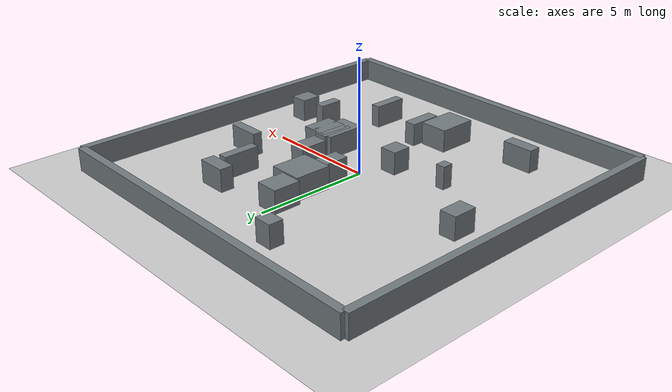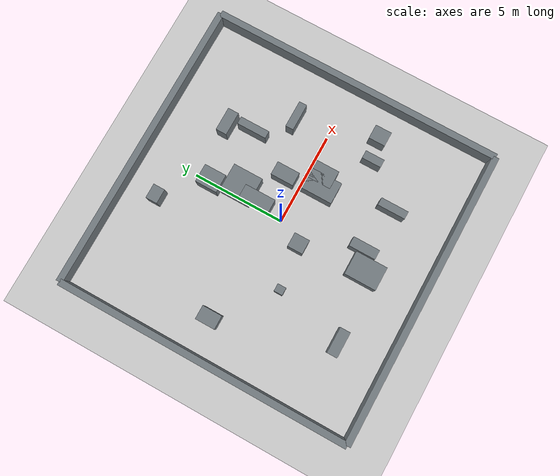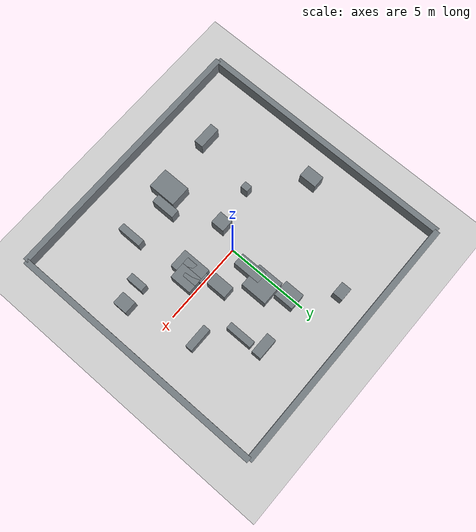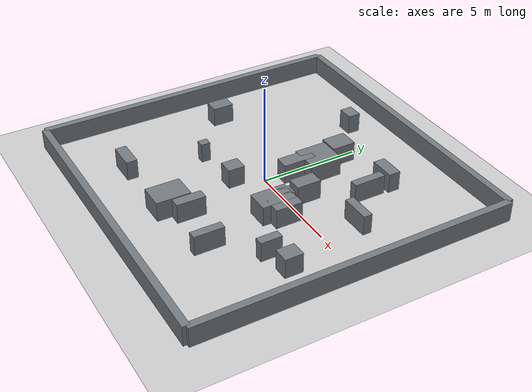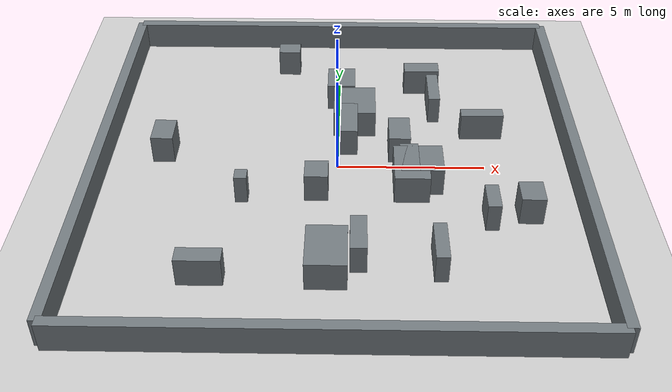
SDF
<?xml version="1.0" ?>
<sdf version="1.10">
  <world name="random_blocks_5">
    <physics name="1ms" type="ignored">
      <max_step_size>0.001</max_step_size>
      <real_time_factor>1.0</real_time_factor>
    </physics>
    <plugin filename="gz-sim-physics-system" name="gz::sim::systems::Physics"/>
    <plugin filename="gz-sim-user-commands-system" name="gz::sim::systems::UserCommands"/>
    <plugin filename="gz-sim-scene-broadcaster-system" name="gz::sim::systems::SceneBroadcaster"/>
    <light name="sun" type="directional">
      <pose>0 0 10 0 0 0</pose>
      <diffuse>0.8 0.8 0.8 1</diffuse>
      <specular>0.2 0.2 0.2 1</specular>
      <direction>-0.5 0.1 -0.9</direction>
    </light>
    <model name="ground_plane">
      <static>true</static>
      <link name="link">
        <collision name="collision"><geometry><plane><normal>0 0 1</normal><size>30 30</size></plane></geometry></collision>
        <visual name="visual"><geometry><plane><normal>0 0 1</normal><size>30 30</size></plane></geometry></visual>
      </link>
    </model>

    <model name="boundary_north">
      <static>true</static>
      <pose>0.000 8.000 0.500 0 0 0</pose>
      <link name="link">
        <collision name="collision">
          <geometry><box><size>16.000 0.350 1.000</size></box></geometry>
        </collision>
        <visual name="visual">
          <geometry><box><size>16.000 0.350 1.000</size></box></geometry>
          <material><ambient>0.45 0.48 0.50 1</ambient><diffuse>0.45 0.48 0.50 1</diffuse></material>
        </visual>
      </link>
    </model>
    <model name="boundary_south">
      <static>true</static>
      <pose>0.000 -8.000 0.500 0 0 0</pose>
      <link name="link">
        <collision name="collision">
          <geometry><box><size>16.000 0.350 1.000</size></box></geometry>
        </collision>
        <visual name="visual">
          <geometry><box><size>16.000 0.350 1.000</size></box></geometry>
          <material><ambient>0.45 0.48 0.50 1</ambient><diffuse>0.45 0.48 0.50 1</diffuse></material>
        </visual>
      </link>
    </model>
    <model name="boundary_west">
      <static>true</static>
      <pose>-8.000 0.000 0.500 0 0 0</pose>
      <link name="link">
        <collision name="collision">
          <geometry><box><size>0.350 16.000 1.000</size></box></geometry>
        </collision>
        <visual name="visual">
          <geometry><box><size>0.350 16.000 1.000</size></box></geometry>
          <material><ambient>0.45 0.48 0.50 1</ambient><diffuse>0.45 0.48 0.50 1</diffuse></material>
        </visual>
      </link>
    </model>
    <model name="boundary_east">
      <static>true</static>
      <pose>8.000 0.000 0.500 0 0 0</pose>
      <link name="link">
        <collision name="collision">
          <geometry><box><size>0.350 16.000 1.000</size></box></geometry>
        </collision>
        <visual name="visual">
          <geometry><box><size>0.350 16.000 1.000</size></box></geometry>
          <material><ambient>0.45 0.48 0.50 1</ambient><diffuse>0.45 0.48 0.50 1</diffuse></material>
        </visual>
      </link>
    </model>
    <model name="block_5_0">
      <static>true</static>
      <pose>-0.254 -4.919 0.500 0 0 0</pose>
      <link name="link">
        <collision name="collision">
          <geometry><box><size>1.275 1.719 1.000</size></box></geometry>
        </collision>
        <visual name="visual">
          <geometry><box><size>1.275 1.719 1.000</size></box></geometry>
          <material><ambient>0.45 0.48 0.50 1</ambient><diffuse>0.45 0.48 0.50 1</diffuse></material>
        </visual>
      </link>
    </model>
    <model name="block_5_1">
      <static>true</static>
      <pose>4.919 -2.612 0.500 0 0 0</pose>
      <link name="link">
        <collision name="collision">
          <geometry><box><size>0.432 1.052 1.000</size></box></geometry>
        </collision>
        <visual name="visual">
          <geometry><box><size>0.432 1.052 1.000</size></box></geometry>
          <material><ambient>0.45 0.48 0.50 1</ambient><diffuse>0.45 0.48 0.50 1</diffuse></material>
        </visual>
      </link>
    </model>
    <model name="block_5_2">
      <static>true</static>
      <pose>-3.966 -5.386 0.500 0 0 0</pose>
      <link name="link">
        <collision name="collision">
          <geometry><box><size>1.391 0.558 1.000</size></box></geometry>
        </collision>
        <visual name="visual">
          <geometry><box><size>1.391 0.558 1.000</size></box></geometry>
          <material><ambient>0.45 0.48 0.50 1</ambient><diffuse>0.45 0.48 0.50 1</diffuse></material>
        </visual>
      </link>
    </model>
    <model name="block_5_3">
      <static>true</static>
      <pose>0.088 4.079 0.500 0 0 0</pose>
      <link name="link">
        <collision name="collision">
          <geometry><box><size>0.998 1.204 1.000</size></box></geometry>
        </collision>
        <visual name="visual">
          <geometry><box><size>0.998 1.204 1.000</size></box></geometry>
          <material><ambient>0.45 0.48 0.50 1</ambient><diffuse>0.45 0.48 0.50 1</diffuse></material>
        </visual>
      </link>
    </model>
    <model name="block_5_4">
      <static>true</static>
      <pose>0.326 1.538 0.500 0 0 0</pose>
      <link name="link">
        <collision name="collision">
          <geometry><box><size>0.707 1.683 1.000</size></box></geometry>
        </collision>
        <visual name="visual">
          <geometry><box><size>0.707 1.683 1.000</size></box></geometry>
          <material><ambient>0.45 0.48 0.50 1</ambient><diffuse>0.45 0.48 0.50 1</diffuse></material>
        </visual>
      </link>
    </model>
    <model name="block_5_5">
      <static>true</static>
      <pose>3.072 4.815 0.500 0 0 0</pose>
      <link name="link">
        <collision name="collision">
          <geometry><box><size>1.277 0.594 1.000</size></box></geometry>
        </collision>
        <visual name="visual">
          <geometry><box><size>1.277 0.594 1.000</size></box></geometry>
          <material><ambient>0.45 0.48 0.50 1</ambient><diffuse>0.45 0.48 0.50 1</diffuse></material>
        </visual>
      </link>
    </model>
    <model name="block_5_6">
      <static>true</static>
      <pose>3.425 3.499 0.500 0 0 0</pose>
      <link name="link">
        <collision name="collision">
          <geometry><box><size>0.402 1.620 1.000</size></box></geometry>
        </collision>
        <visual name="visual">
          <geometry><box><size>0.402 1.620 1.000</size></box></geometry>
          <material><ambient>0.45 0.48 0.50 1</ambient><diffuse>0.45 0.48 0.50 1</diffuse></material>
        </visual>
      </link>
    </model>
    <model name="block_5_7">
      <static>true</static>
      <pose>0.571 2.590 0.500 0 0 0</pose>
      <link name="link">
        <collision name="collision">
          <geometry><box><size>1.481 1.621 1.000</size></box></geometry>
        </collision>
        <visual name="visual">
          <geometry><box><size>1.481 1.621 1.000</size></box></geometry>
          <material><ambient>0.45 0.48 0.50 1</ambient><diffuse>0.45 0.48 0.50 1</diffuse></material>
        </visual>
      </link>
    </model>
    <model name="block_5_8">
      <static>true</static>
      <pose>3.001 -0.741 0.500 0 0 0</pose>
      <link name="link">
        <collision name="collision">
          <geometry><box><size>0.993 1.349 1.000</size></box></geometry>
        </collision>
        <visual name="visual">
          <geometry><box><size>0.993 1.349 1.000</size></box></geometry>
          <material><ambient>0.45 0.48 0.50 1</ambient><diffuse>0.45 0.48 0.50 1</diffuse></material>
        </visual>
      </link>
    </model>
    <model name="block_5_9">
      <static>true</static>
      <pose>2.448 -0.952 0.500 0 0 0</pose>
      <link name="link">
        <collision name="collision">
          <geometry><box><size>1.160 1.753 1.000</size></box></geometry>
        </collision>
        <visual name="visual">
          <geometry><box><size>1.160 1.753 1.000</size></box></geometry>
          <material><ambient>0.45 0.48 0.50 1</ambient><diffuse>0.45 0.48 0.50 1</diffuse></material>
        </visual>
      </link>
    </model>
    <model name="block_5_10">
      <static>true</static>
      <pose>-1.936 6.116 0.500 0 0 0</pose>
      <link name="link">
        <collision name="collision">
          <geometry><box><size>0.797 0.632 1.000</size></box></geometry>
        </collision>
        <visual name="visual">
          <geometry><box><size>0.797 0.632 1.000</size></box></geometry>
          <material><ambient>0.45 0.48 0.50 1</ambient><diffuse>0.45 0.48 0.50 1</diffuse></material>
        </visual>
      </link>
    </model>
    <model name="block_5_11">
      <static>true</static>
      <pose>2.111 0.916 0.500 0 0 0</pose>
      <link name="link">
        <collision name="collision">
          <geometry><box><size>0.731 1.244 1.000</size></box></geometry>
        </collision>
        <visual name="visual">
          <geometry><box><size>0.731 1.244 1.000</size></box></geometry>
          <material><ambient>0.45 0.48 0.50 1</ambient><diffuse>0.45 0.48 0.50 1</diffuse></material>
        </visual>
      </link>
    </model>
    <model name="block_5_12">
      <static>true</static>
      <pose>-0.664 -1.366 0.500 0 0 0</pose>
      <link name="link">
        <collision name="collision">
          <geometry><box><size>0.772 0.834 1.000</size></box></geometry>
        </collision>
        <visual name="visual">
          <geometry><box><size>0.772 0.834 1.000</size></box></geometry>
          <material><ambient>0.45 0.48 0.50 1</ambient><diffuse>0.45 0.48 0.50 1</diffuse></material>
        </visual>
      </link>
    </model>
    <model name="block_5_13">
      <static>true</static>
      <pose>-5.958 0.724 0.500 0 0 0</pose>
      <link name="link">
        <collision name="collision">
          <geometry><box><size>0.747 1.074 1.000</size></box></geometry>
        </collision>
        <visual name="visual">
          <geometry><box><size>0.747 1.074 1.000</size></box></geometry>
          <material><ambient>0.45 0.48 0.50 1</ambient><diffuse>0.45 0.48 0.50 1</diffuse></material>
        </visual>
      </link>
    </model>
    <model name="block_5_14">
      <static>true</static>
      <pose>5.035 1.884 0.500 0 0 0</pose>
      <link name="link">
        <collision name="collision">
          <geometry><box><size>1.473 0.432 1.000</size></box></geometry>
        </collision>
        <visual name="visual">
          <geometry><box><size>1.473 0.432 1.000</size></box></geometry>
          <material><ambient>0.45 0.48 0.50 1</ambient><diffuse>0.45 0.48 0.50 1</diffuse></material>
        </visual>
      </link>
    </model>
    <model name="block_5_15">
      <static>true</static>
      <pose>3.158 -4.654 0.500 0 0 0</pose>
      <link name="link">
        <collision name="collision">
          <geometry><box><size>0.420 1.503 1.000</size></box></geometry>
        </collision>
        <visual name="visual">
          <geometry><box><size>0.420 1.503 1.000</size></box></geometry>
          <material><ambient>0.45 0.48 0.50 1</ambient><diffuse>0.45 0.48 0.50 1</diffuse></material>
        </visual>
      </link>
    </model>
    <model name="block_5_16">
      <static>true</static>
      <pose>-3.095 -1.664 0.500 0 0 0</pose>
      <link name="link">
        <collision name="collision">
          <geometry><box><size>0.410 0.465 1.000</size></box></geometry>
        </collision>
        <visual name="visual">
          <geometry><box><size>0.410 0.465 1.000</size></box></geometry>
          <material><ambient>0.45 0.48 0.50 1</ambient><diffuse>0.45 0.48 0.50 1</diffuse></material>
        </visual>
      </link>
    </model>
    <model name="block_5_17">
      <static>true</static>
      <pose>2.397 -0.693 0.500 0 0 0</pose>
      <link name="link">
        <collision name="collision">
          <geometry><box><size>0.616 1.458 1.000</size></box></geometry>
        </collision>
        <visual name="visual">
          <geometry><box><size>0.616 1.458 1.000</size></box></geometry>
          <material><ambient>0.45 0.48 0.50 1</ambient><diffuse>0.45 0.48 0.50 1</diffuse></material>
        </visual>
      </link>
    </model>
    <model name="block_5_18">
      <static>true</static>
      <pose>6.179 -2.355 0.500 0 0 0</pose>
      <link name="link">
        <collision name="collision">
          <geometry><box><size>0.779 0.897 1.000</size></box></geometry>
        </collision>
        <visual name="visual">
          <geometry><box><size>0.779 0.897 1.000</size></box></geometry>
          <material><ambient>0.45 0.48 0.50 1</ambient><diffuse>0.45 0.48 0.50 1</diffuse></material>
        </visual>
      </link>
    </model>
    <model name="block_5_19">
      <static>true</static>
      <pose>0.703 -4.329 0.500 0 0 0</pose>
      <link name="link">
        <collision name="collision">
          <geometry><box><size>0.519 1.448 1.000</size></box></geometry>
        </collision>
        <visual name="visual">
          <geometry><box><size>0.519 1.448 1.000</size></box></geometry>
          <material><ambient>0.45 0.48 0.50 1</ambient><diffuse>0.45 0.48 0.50 1</diffuse></material>
        </visual>
      </link>
    </model>
  </world>
</sdf>
